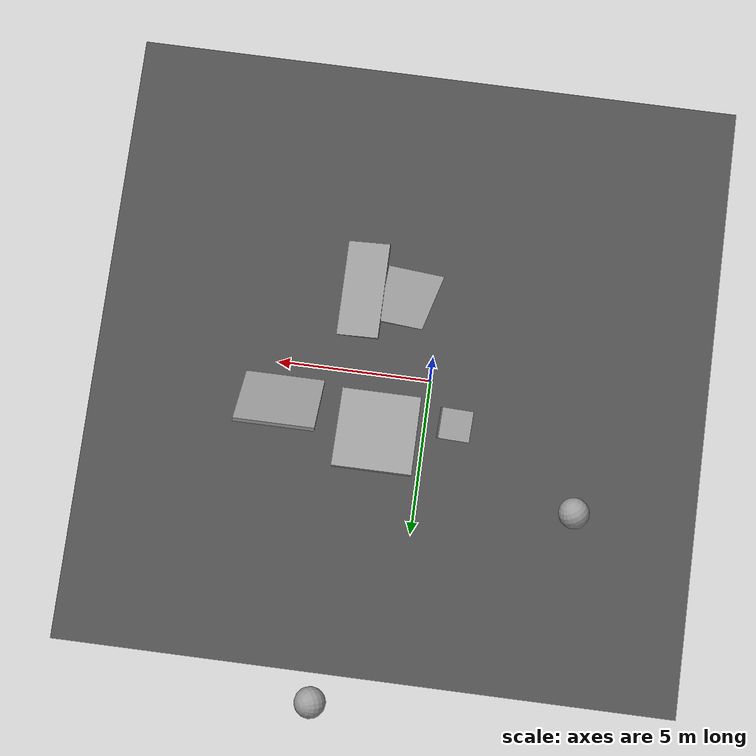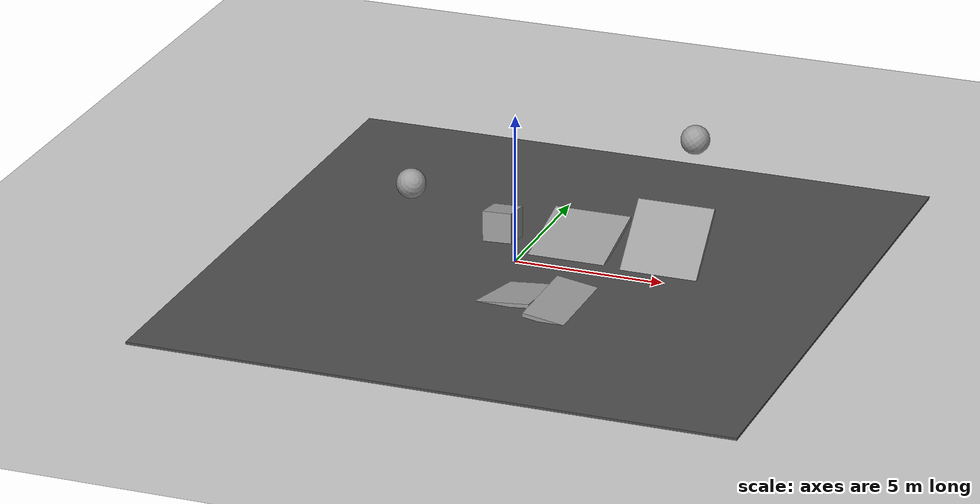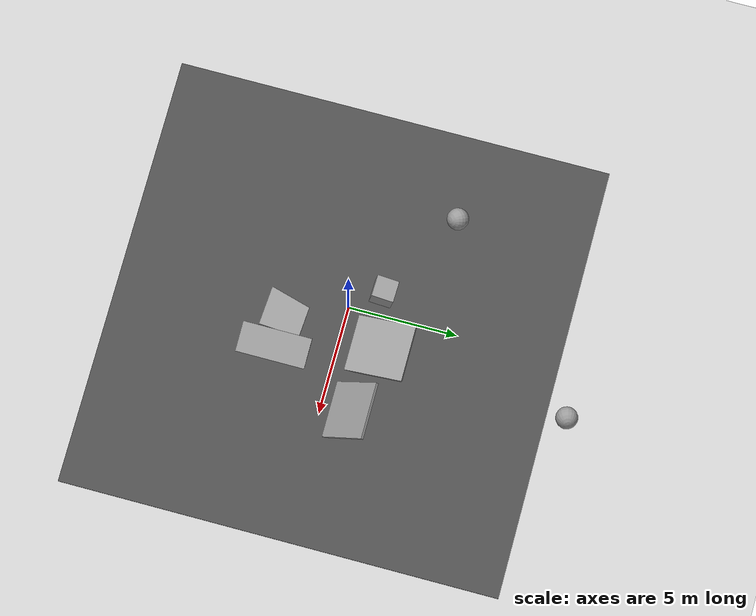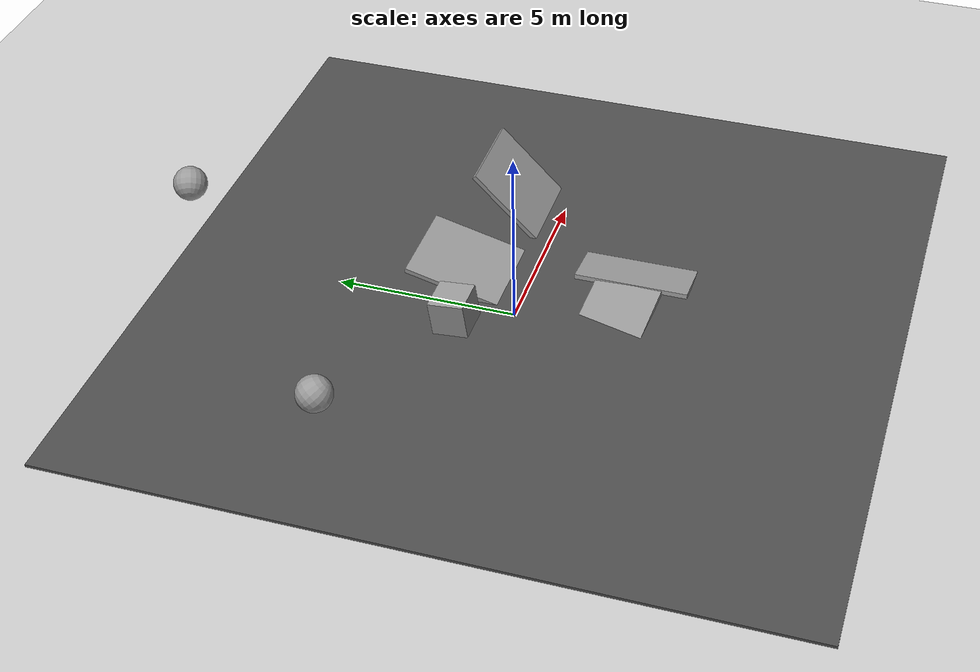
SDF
<sdf version="1.6">
 <world name="default">
  <scene><ambient>0.4 0.4 0.4 1</ambient><background>0.7 0.7 0.7 1</background><shadows>1</shadows></scene>
  <light name="sun" type="directional">
   <pose>0 0 10 0 -0 0</pose>
   <diffuse>0.8 0.8 0.8 1</diffuse>
   <specular>0.2 0.2 0.2 1</specular>
   <attenuation>
    <range>1000</range>
    <constant>0.9</constant>
    <linear>0.01</linear>
    <quadratic>0.001</quadratic>
   </attenuation>
   <direction>-0.5 0.1 -0.9</direction>
  </light>
  <model name="ground_plane">
   <static>1</static>
   <link name="link">
    <collision name="collision">
     <geometry><plane><normal>0 0 1</normal><size>100 100</size></plane></geometry>
     <surface>
      <contact><collide_bitmask>65535</collide_bitmask></contact>
      <friction><ode><mu>100</mu><mu2>50</mu2></ode></friction>
     </surface>
    </collision>
    <visual name="visual">
     <cast_shadows>0</cast_shadows>
     <geometry><plane><normal>0 0 1</normal><size>100 100</size></plane></geometry>
     <material>
      <script><uri>file://media/materials/scripts/gazebo.material</uri><name>Gazebo/Grey</name></script>
     </material>
    </visual>
   </link>
  </model>
  <physics name="default_physics" default="0" type="ode">
   <real_time_update_rate>1000</real_time_update_rate>
   <max_step_size>0.001</max_step_size>
   <real_time_factor>1</real_time_factor>
   <ode>
    <solver>
     <type>quick</type>
     <iters>150</iters>
     <precon_iters>0</precon_iters>
     <sor>1.4</sor>
     <use_dynamic_moi_rescaling>1</use_dynamic_moi_rescaling>
    </solver>
    <constraints>
     <cfm>1e-05</cfm>
     <erp>0.2</erp>
     <contact_max_correcting_vel>2000</contact_max_correcting_vel>
     <contact_surface_layer>0.01</contact_surface_layer>
    </constraints>
   </ode>
  </physics>
  <gravity>0 0 -9.8</gravity>
  <magnetic_field>6e-06 2.3e-05 -4.2e-05</magnetic_field>
  <atmosphere type="adiabatic"/>
  <audio><device>default</device></audio>
  <spherical_coordinates>
   <surface_model>EARTH_WGS84</surface_model>
   <latitude_deg>0</latitude_deg>
   <longitude_deg>0</longitude_deg>
   <elevation>0</elevation>
   <heading_deg>0</heading_deg>
  </spherical_coordinates>
  <model name="unit_box">
   <pose>-0.969267 1.3769 0.628349 -0.110636 -0.05404 -0.026534</pose>
   <link name="link">
    <inertial>
     <mass>1</mass>
     <inertia>
      <ixx>0.166667</ixx>
      <ixy>0</ixy>
      <ixz>0</ixz>
      <iyy>0.166667</iyy>
      <iyz>0</iyz>
      <izz>0.166667</izz>
     </inertia>
    </inertial>
    <collision name="collision"><geometry><box><size>1 1 1</size></box></geometry></collision>
    <visual name="visual">
     <geometry><box><size>1 1 1</size></box></geometry>
     <material>
      <script><name>Gazebo/Grey</name><uri>file://media/materials/scripts/gazebo.material</uri></script>
     </material>
    </visual>
   </link>
  </model>
  <model name="ramp_static">
   <link name="link">
    <inertial>
     <mass>1</mass>
     <inertia>
      <ixx>0.166667</ixx>
      <ixy>0</ixy>
      <ixz>0</ixz>
      <iyy>0.166667</iyy>
      <iyz>0</iyz>
      <izz>0.166667</izz>
     </inertia>
    </inertial>
    <visual name="visual">
     <geometry><box><size>2.59037 3.16832 0.131346</size></box></geometry>
     <material>
      <script><name>Gazebo/Grey</name><uri>file://media/materials/scripts/gazebo.material</uri></script>
     </material>
    </visual>
    <collision name="collision">
     <geometry><box><size>2.59037 3.16832 0.131346</size></box></geometry>
     <surface>
      <friction>
       <ode><mu>1</mu><mu2>1</mu2><fdir1>0 0 0</fdir1><slip1>0</slip1><slip2>0</slip2></ode>
       <torsional>
        <coefficient>1</coefficient>
        <patch_radius>0</patch_radius>
        <surface_radius>0</surface_radius>
        <use_patch_radius>1</use_patch_radius>
        <ode><slip>0</slip></ode>
       </torsional>
      </friction>
      <bounce><restitution_coefficient>0</restitution_coefficient><threshold>1e+06</threshold></bounce>
      <contact>
       <collide_without_contact>0</collide_without_contact>
       <collide_without_contact_bitmask>1</collide_without_contact_bitmask>
       <collide_bitmask>1</collide_bitmask>
       <ode>
        <soft_cfm>0</soft_cfm>
        <soft_erp>0.2</soft_erp>
        <kp>1e+13</kp>
        <kd>1</kd>
        <max_vel>0.01</max_vel>
        <min_depth>0</min_depth>
       </ode>
       <bullet>
        <split_impulse>1</split_impulse>
        <split_impulse_penetration_threshold>-0.01</split_impulse_penetration_threshold>
        <soft_cfm>0</soft_cfm>
        <soft_erp>0.2</soft_erp>
        <kp>1e+13</kp>
        <kd>1</kd>
       </bullet>
      </contact>
     </surface>
    </collision>
   </link>
   <static>1</static>
   <pose>1.50462 1.65185 0.262242 0.249773 -0 0</pose>
  </model>
  <model name="ramp_static_0">
   <link name="link">
    <inertial>
     <mass>1</mass>
     <inertia>
      <ixx>0.166667</ixx>
      <ixy>0</ixy>
      <ixz>0</ixz>
      <iyy>0.166667</iyy>
      <iyz>0</iyz>
      <izz>0.166667</izz>
     </inertia>
    </inertial>
    <visual name="visual">
     <geometry><box><size>2.59037 3.16832 0.131346</size></box></geometry>
     <material>
      <script><name>Gazebo/Grey</name><uri>file://media/materials/scripts/gazebo.material</uri></script>
     </material>
    </visual>
    <collision name="collision">
     <geometry><box><size>2.59037 3.16832 0.131346</size></box></geometry>
     <surface>
      <friction>
       <ode><mu>1</mu><mu2>1</mu2><fdir1>0 0 0</fdir1><slip1>0</slip1><slip2>0</slip2></ode>
       <torsional>
        <coefficient>1</coefficient>
        <patch_radius>0</patch_radius>
        <surface_radius>0</surface_radius>
        <use_patch_radius>1</use_patch_radius>
        <ode><slip>0</slip></ode>
       </torsional>
      </friction>
      <bounce><restitution_coefficient>0</restitution_coefficient><threshold>1e+06</threshold></bounce>
      <contact>
       <collide_without_contact>0</collide_without_contact>
       <collide_without_contact_bitmask>1</collide_without_contact_bitmask>
       <collide_bitmask>1</collide_bitmask>
       <ode>
        <soft_cfm>0</soft_cfm>
        <soft_erp>0.2</soft_erp>
        <kp>1e+13</kp>
        <kd>1</kd>
        <max_vel>0.01</max_vel>
        <min_depth>0</min_depth>
       </ode>
       <bullet>
        <split_impulse>1</split_impulse>
        <split_impulse_penetration_threshold>-0.01</split_impulse_penetration_threshold>
        <soft_cfm>0</soft_cfm>
        <soft_erp>0.2</soft_erp>
        <kp>1e+13</kp>
        <kd>1</kd>
       </bullet>
      </contact>
     </surface>
    </collision>
   </link>
   <static>1</static>
   <pose>4.69719 1.11392 0.672027 0.789711 -0 0</pose>
  </model>
  <model name="unit_sphere">
   <pose>2.4514 10.6239 0.543806 0.927196 0.103457 1.83091</pose>
   <link name="link">
    <inertial>
     <mass>1</mass>
     <inertia><ixx>0.1</ixx><ixy>0</ixy><ixz>0</ixz><iyy>0.1</iyy><iyz>0</iyz><izz>0.1</izz></inertia>
    </inertial>
    <collision name="collision"><geometry><sphere><radius>0.5</radius></sphere></geometry></collision>
    <visual name="visual">
     <geometry><sphere><radius>0.5</radius></sphere></geometry>
     <material>
      <script><name>Gazebo/Grey</name><uri>file://media/materials/scripts/gazebo.material</uri></script>
     </material>
    </visual>
   </link>
  </model>
  <model name="unit_sphere_0">
   <pose>-5.0867 3.69381 0.55 -0.727974 0.657281 -1.88994</pose>
   <link name="link">
    <inertial>
     <mass>1</mass>
     <inertia><ixx>0.1</ixx><ixy>0</ixy><ixz>0</ixz><iyy>0.1</iyy><iyz>0</iyz><izz>0.1</izz></inertia>
    </inertial>
    <collision name="collision"><geometry><sphere><radius>0.5</radius></sphere></geometry></collision>
    <visual name="visual">
     <geometry><sphere><radius>0.5</radius></sphere></geometry>
     <material>
      <script><name>Gazebo/Grey</name><uri>file://media/materials/scripts/gazebo.material</uri></script>
     </material>
    </visual>
   </link>
  </model>
  <model name="ramp_static_1">
   <link name="link">
    <inertial>
     <mass>1</mass>
     <inertia>
      <ixx>0.166667</ixx>
      <ixy>0</ixy>
      <ixz>0</ixz>
      <iyy>0.166667</iyy>
      <iyz>0</iyz>
      <izz>0.166667</izz>
     </inertia>
    </inertial>
    <visual name="visual">
     <geometry><box><size>2.59037 3.16831 0.131346</size></box></geometry>
     <material>
      <script><name>Gazebo/Grey</name><uri>file://media/materials/scripts/gazebo.material</uri></script>
     </material>
    </visual>
    <collision name="collision">
     <geometry><box><size>2.59037 3.16831 0.131346</size></box></geometry>
     <surface>
      <friction>
       <ode><mu>1</mu><mu2>1</mu2><fdir1>0 0 0</fdir1><slip1>0</slip1><slip2>0</slip2></ode>
       <torsional>
        <coefficient>1</coefficient>
        <patch_radius>0</patch_radius>
        <surface_radius>0</surface_radius>
        <use_patch_radius>1</use_patch_radius>
        <ode><slip>0</slip></ode>
       </torsional>
      </friction>
      <bounce><restitution_coefficient>0</restitution_coefficient><threshold>1e+06</threshold></bounce>
      <contact>
       <collide_without_contact>0</collide_without_contact>
       <collide_without_contact_bitmask>1</collide_without_contact_bitmask>
       <collide_bitmask>1</collide_bitmask>
       <ode>
        <soft_cfm>0</soft_cfm>
        <soft_erp>0.2</soft_erp>
        <kp>1e+13</kp>
        <kd>1</kd>
        <max_vel>0.01</max_vel>
        <min_depth>0</min_depth>
       </ode>
       <bullet>
        <split_impulse>1</split_impulse>
        <split_impulse_penetration_threshold>-0.01</split_impulse_penetration_threshold>
        <soft_cfm>0</soft_cfm>
        <soft_erp>0.2</soft_erp>
        <kp>1e+13</kp>
        <kd>1</kd>
       </bullet>
      </contact>
     </surface>
    </collision>
   </link>
   <static>1</static>
   <pose>3.13669 -2.74405 0 0 0.151877 0</pose>
  </model>
  <model name="ramp_static_1_clone">
   <link name="link">
    <inertial>
     <mass>1</mass>
     <inertia>
      <ixx>0.166667</ixx>
      <ixy>0</ixy>
      <ixz>0</ixz>
      <iyy>0.166667</iyy>
      <iyz>0</iyz>
      <izz>0.166667</izz>
     </inertia>
    </inertial>
    <visual name="visual">
     <geometry><box><size>2.59037 1.87329 0.131346</size></box></geometry>
     <material>
      <script><name>Gazebo/Grey</name><uri>file://media/materials/scripts/gazebo.material</uri></script>
     </material>
    </visual>
    <collision name="collision">
     <geometry><box><size>2.59037 1.87329 0.131346</size></box></geometry>
     <surface>
      <friction>
       <ode><mu>1</mu><mu2>1</mu2><fdir1>0 0 0</fdir1><slip1>0</slip1><slip2>0</slip2></ode>
       <torsional>
        <coefficient>1</coefficient>
        <patch_radius>0</patch_radius>
        <surface_radius>0</surface_radius>
        <use_patch_radius>1</use_patch_radius>
        <ode><slip>0</slip></ode>
       </torsional>
      </friction>
      <bounce><restitution_coefficient>0</restitution_coefficient><threshold>1e+06</threshold></bounce>
      <contact>
       <collide_without_contact>0</collide_without_contact>
       <collide_without_contact_bitmask>1</collide_without_contact_bitmask>
       <collide_bitmask>1</collide_bitmask>
       <ode>
        <soft_cfm>0</soft_cfm>
        <soft_erp>0.2</soft_erp>
        <kp>1e+13</kp>
        <kd>1</kd>
        <max_vel>0.01</max_vel>
        <min_depth>0</min_depth>
       </ode>
       <bullet>
        <split_impulse>1</split_impulse>
        <split_impulse_penetration_threshold>-0.01</split_impulse_penetration_threshold>
        <soft_cfm>0</soft_cfm>
        <soft_erp>0.2</soft_erp>
        <kp>1e+13</kp>
        <kd>1</kd>
       </bullet>
      </contact>
     </surface>
    </collision>
   </link>
   <static>1</static>
   <pose>0.591812 -2.61725 0.026187 -0.023842 -0.111178 -0.05884</pose>
  </model>
  <model name="asphalt_plane">
   <static>1</static>
   <link name="link">
    <collision name="collision"><geometry><box><size>20 20 0.1</size></box></geometry></collision>
    <visual name="visual">
     <cast_shadows>0</cast_shadows>
     <geometry><box><size>20 20 0.1</size></box></geometry>
     <material>
      <script>
       <uri>model://asphalt_plane/materials/scripts</uri>
       <uri>model://asphalt_plane/materials/textures</uri>
       <name>vrc/asphalt</name>
      </script>
     </material>
    </visual>
   </link>
   <pose>0.947779 -0.267693 0 0 -0 0</pose>
  </model>
 </world>
</sdf>
